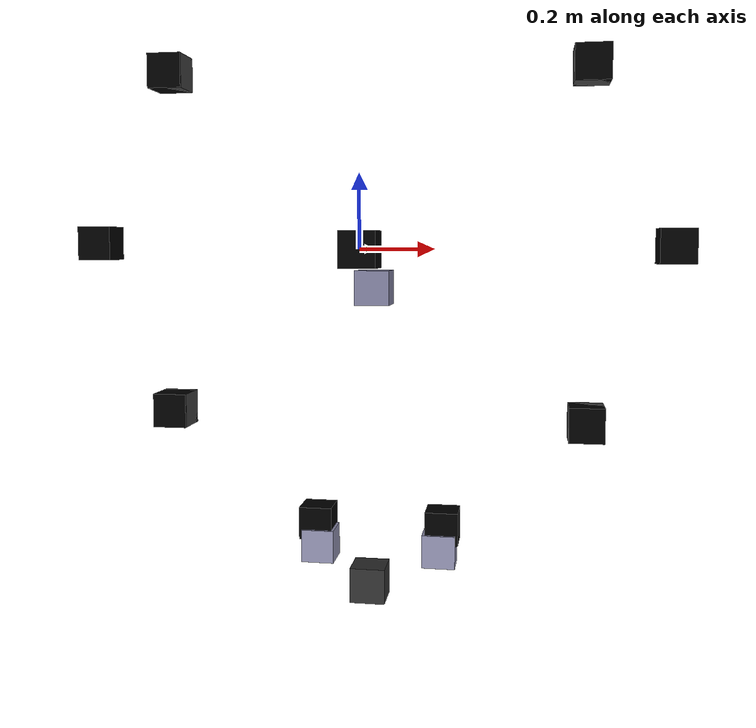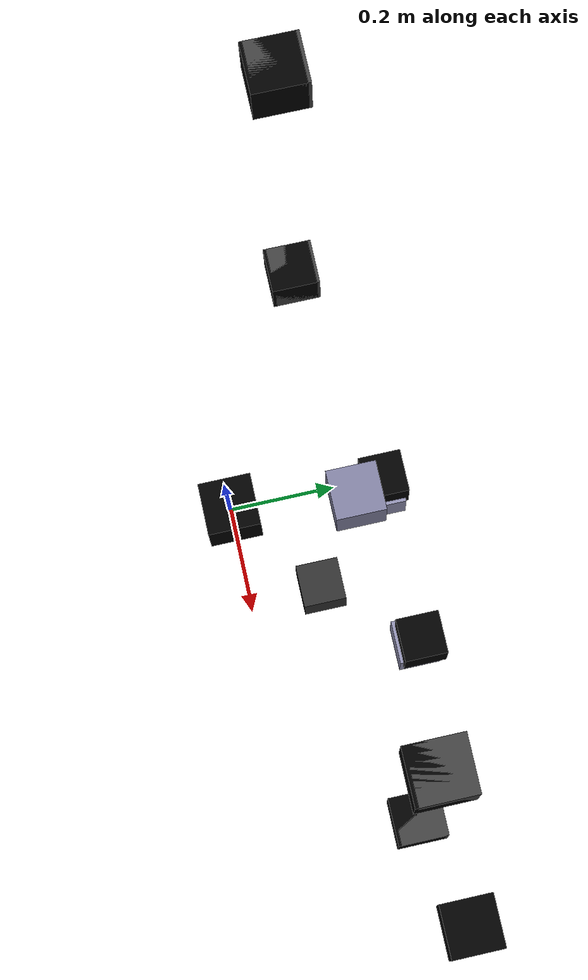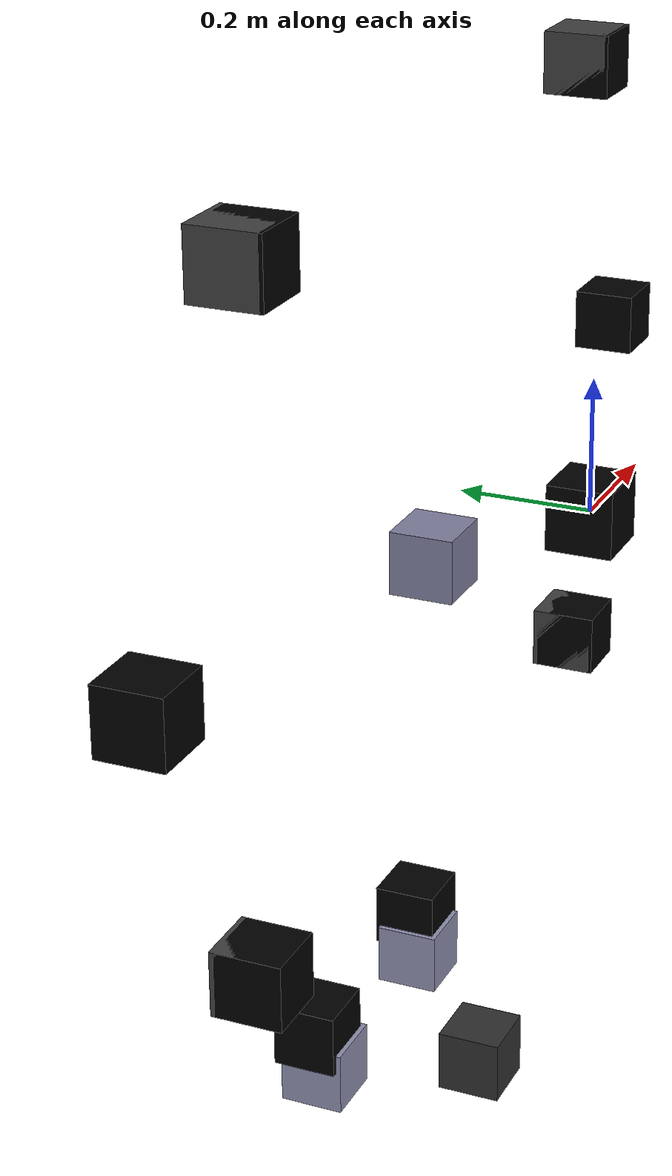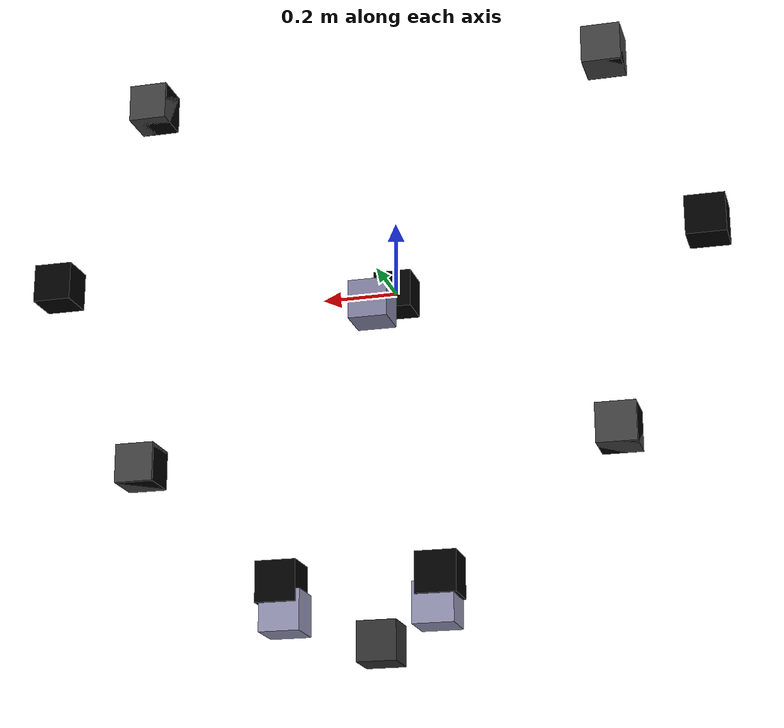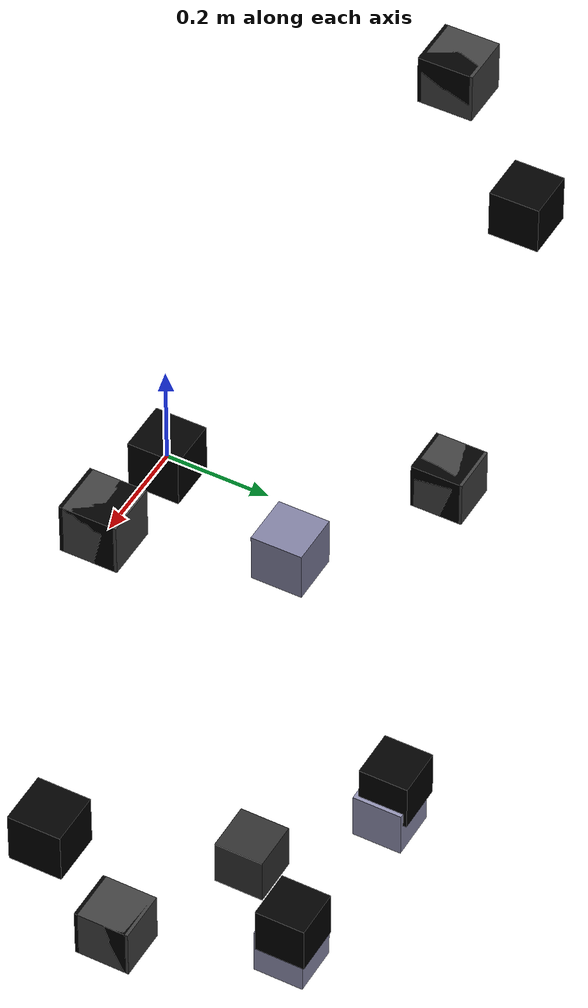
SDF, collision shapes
<?xml version="1.0" ?>
<!--
  vtol model.sdf — generated from vtol.urdf via gz sdf -p
  Spawn pose: x=0 y=0 z=0.3223 roll=1.5708 (belly-down, ground level)
  Propellers start static; mavlink_controller.py spins them up on ARM.
-->
<sdf version="1.11">
<model name='vtol'>
    <link name='base_link'>
      <inertial>
        <pose>2.4691358024688639e-05 0.1169185185185185 -0.036632098765432088 0 0 0</pose>
        <mass>8.0999999999999996</mass>
        <inertia>
          <ixx>2.7324871418765428</ixx>
          <ixy>-0.0024063362962963228</ixy>
          <ixz>0.010952393580246911</ixz>
          <iyy>4.1716076587160487</iyy>
          <iyz>0.075318485185185191</iyz>
          <izz>2.68398566528395</izz>
        </inertia>
      </inertial>
      <collision name='base_link_collision'>
        <pose>0 0 0 0 0 0</pose>
        <geometry>
          <box>
            <size>0.10000000000000001 0.10000000000000001 0.10000000000000001</size>
          </box>
        </geometry>
        <surface>
          <contact>
            <ode/>
          </contact>
          <friction>
            <ode/>
          </friction>
        </surface>
      </collision>
      <collision name='base_link_fixed_joint_lump__motor_1_link_collision_1'>
        <pose>-0.60999999999999999 0.2351 0.51780000000000004 0 0 0</pose>
        <geometry>
          <box>
            <size>0.10000000000000001 0.10000000000000001 0.10000000000000001</size>
          </box>
        </geometry>
        <surface>
          <contact>
            <ode/>
          </contact>
          <friction>
            <ode/>
          </friction>
        </surface>
      </collision>
      <collision name='base_link_fixed_joint_lump__motor_2_link_collision_2'>
        <pose>0.60999999999999999 0.2351 0.50780000000000003 0 0 0</pose>
        <geometry>
          <box>
            <size>0.10000000000000001 0.10000000000000001 0.10000000000000001</size>
          </box>
        </geometry>
        <surface>
          <contact>
            <ode/>
          </contact>
          <friction>
            <ode/>
          </friction>
        </surface>
      </collision>
      <collision name='base_link_fixed_joint_lump__motor_3_link_collision_3'>
        <pose>0.60999999999999999 0.2351 -0.49220000000000003 0 0 0</pose>
        <geometry>
          <box>
            <size>0.10000000000000001 0.10000000000000001 0.10000000000000001</size>
          </box>
        </geometry>
        <surface>
          <contact>
            <ode/>
          </contact>
          <friction>
            <ode/>
          </friction>
        </surface>
      </collision>
      <collision name='base_link_fixed_joint_lump__motor_4_link_collision_4'>
        <pose>-0.60999999999999999 0.2351 -0.48220000000000002 0 0 0</pose>
        <geometry>
          <box>
            <size>0.10000000000000001 0.10000000000000001 0.10000000000000001</size>
          </box>
        </geometry>
        <surface>
          <contact>
            <ode/>
          </contact>
          <friction>
            <ode/>
          </friction>
        </surface>
      </collision>
      <collision name='base_link_fixed_joint_lump__tail_left_link_collision_5'>
        <pose>-0.19420000000000001 0.35630000000000001 -0.84370000000000001 0 0 0</pose>
        <geometry>
          <box>
            <size>0.10000000000000001 0.10000000000000001 0.10000000000000001</size>
          </box>
        </geometry>
        <surface>
          <contact>
            <ode/>
          </contact>
          <friction>
            <ode/>
          </friction>
        </surface>
      </collision>
      <collision name='base_link_fixed_joint_lump__tail_right_link_collision_6'>
        <pose>0.19420000000000001 0.35630000000000001 -0.84370000000000001 0 0 0</pose>
        <geometry>
          <box>
            <size>0.10000000000000001 0.10000000000000001 0.10000000000000001</size>
          </box>
        </geometry>
        <surface>
          <contact>
            <ode/>
          </contact>
          <friction>
            <ode/>
          </friction>
        </surface>
      </collision>
      <collision name='base_link_fixed_joint_lump__wing_left_collision_7'>
        <pose>-0.84899999999999998 0.25979999999999998 0.017000000000000001 0 0 0</pose>
        <geometry>
          <box>
            <size>0.10000000000000001 0.10000000000000001 0.10000000000000001</size>
          </box>
        </geometry>
        <surface>
          <contact>
            <ode/>
          </contact>
          <friction>
            <ode/>
          </friction>
        </surface>
      </collision>
      <collision name='base_link_fixed_joint_lump__wing_right_collision_8'>
        <pose>0.84919999999999995 0.2626 0.0083999999999999995 0 0 0</pose>
        <geometry>
          <box>
            <size>0.10000000000000001 0.10000000000000001 0.10000000000000001</size>
          </box>
        </geometry>
        <surface>
          <contact>
            <ode/>
          </contact>
          <friction>
            <ode/>
          </friction>
        </surface>
      </collision>
      <visual name='base_link_visual'>
        <pose>-1.6242000000000001 -0.32229999999999998 -1.0217000000000001 0 0 0</pose>
        <geometry>
          <mesh>
            <scale>0.001 0.001 0.001</scale>
            <uri>model://vtol/meshes/fuselage.stl</uri>
          </mesh>
        </geometry>
        <material>
          <diffuse>0 0 0 1</diffuse>
          <ambient>0 0 0 1</ambient>
        </material>
      </visual>
      <visual name='base_link_fixed_joint_lump__motor_1_link_visual_1'>
        <pose>-1.6242000000000001 -0.32229999999999998 -1.0217000000000001 0 0 0</pose>
        <geometry>
          <mesh>
            <scale>0.001 0.001 0.001</scale>
            <uri>model://vtol/meshes/motor_1_body.stl</uri>
          </mesh>
        </geometry>
        <material>
          <diffuse>0.187500015 0.187500015 0.187500015 1</diffuse>
          <ambient>0.187500015 0.187500015 0.187500015 1</ambient>
        </material>
      </visual>
      <visual name='base_link_fixed_joint_lump__motor_2_link_visual_2'>
        <pose>-1.6242000000000001 -0.32229999999999998 -1.0217000000000001 0 0 0</pose>
        <geometry>
          <mesh>
            <scale>0.001 0.001 0.001</scale>
            <uri>model://vtol/meshes/motor_2_body.stl</uri>
          </mesh>
        </geometry>
        <material>
          <diffuse>0.187500015 0.187500015 0.187500015 1</diffuse>
          <ambient>0.187500015 0.187500015 0.187500015 1</ambient>
        </material>
      </visual>
      <visual name='base_link_fixed_joint_lump__motor_3_link_visual_3'>
        <pose>-1.6242000000000001 -0.32229999999999998 -1.0217000000000001 0 0 0</pose>
        <geometry>
          <mesh>
            <scale>0.001 0.001 0.001</scale>
            <uri>model://vtol/meshes/motor_3_body.stl</uri>
          </mesh>
        </geometry>
        <material>
          <diffuse>0.187500015 0.187500015 0.187500015 1</diffuse>
          <ambient>0.187500015 0.187500015 0.187500015 1</ambient>
        </material>
      </visual>
      <visual name='base_link_fixed_joint_lump__motor_4_link_visual_4'>
        <pose>-1.6242000000000001 -0.32229999999999998 -1.0217000000000001 0 0 0</pose>
        <geometry>
          <mesh>
            <scale>0.001 0.001 0.001</scale>
            <uri>model://vtol/meshes/motor_4_body.stl</uri>
          </mesh>
        </geometry>
        <material>
          <diffuse>0.187500015 0.187500015 0.187500015 1</diffuse>
          <ambient>0.187500015 0.187500015 0.187500015 1</ambient>
        </material>
      </visual>
      <visual name='base_link_fixed_joint_lump__tail_left_link_visual_5'>
        <pose>-1.6242000000000001 -0.32229999999999998 -1.0217000000000001 0 0 0</pose>
        <geometry>
          <mesh>
            <scale>0.001 0.001 0.001</scale>
            <uri>model://vtol/meshes/tail_left.stl</uri>
          </mesh>
        </geometry>
        <material>
          <diffuse>0.4375 0.4375 0.5 1</diffuse>
          <ambient>0.4375 0.4375 0.5 1</ambient>
        </material>
      </visual>
      <visual name='base_link_fixed_joint_lump__tail_right_link_visual_6'>
        <pose>-1.6242000000000001 -0.32229999999999998 -1.0217000000000001 0 0 0</pose>
        <geometry>
          <mesh>
            <scale>0.001 0.001 0.001</scale>
            <uri>model://vtol/meshes/tail_right.stl</uri>
          </mesh>
        </geometry>
        <material>
          <diffuse>0.4375 0.4375 0.5 1</diffuse>
          <ambient>0.4375 0.4375 0.5 1</ambient>
        </material>
      </visual>
      <visual name='base_link_fixed_joint_lump__wing_left_visual_7'>
        <pose>-1.6242000000000001 -0.32229999999999998 -1.0217000000000001 0 0 0</pose>
        <geometry>
          <mesh>
            <scale>0.001 0.001 0.001</scale>
            <uri>model://vtol/meshes/wing_left.stl</uri>
          </mesh>
        </geometry>
        <material>
          <diffuse>1 1 0 1</diffuse>
          <ambient>1 1 0 1</ambient>
        </material>
      </visual>
      <visual name='base_link_fixed_joint_lump__wing_right_visual_8'>
        <pose>-1.6242000000000001 -0.32229999999999998 -1.0217000000000001 0 0 0</pose>
        <geometry>
          <mesh>
            <scale>0.001 0.001 0.001</scale>
            <uri>model://vtol/meshes/wing_right.stl</uri>
          </mesh>
        </geometry>
        <material>
          <diffuse>1 1 0 1</diffuse>
          <ambient>1 1 0 1</ambient>
        </material>
      </visual>
      <gravity>false</gravity>
      <kinematic>true</kinematic>
      <gravity>false</gravity>
      <kinematic>true</kinematic>
      <gravity>false</gravity>
      <kinematic>true</kinematic>
      <gravity>false</gravity>
      <kinematic>true</kinematic>
      <gravity>false</gravity>
      <kinematic>true</kinematic>
      <gravity>false</gravity>
      <kinematic>true</kinematic>
      <gravity>false</gravity>
      <kinematic>true</kinematic>
      <gravity>false</gravity>
      <kinematic>true</kinematic>
      <gravity>false</gravity>
      <kinematic>true</kinematic>
    </link>
    <joint name='aileron_link_joint' type='revolute'>
      <pose relative_to='base_link'>0 0.24379999999999999 -0.1118 0 0 0</pose>
      <parent>base_link</parent>
      <child>aileron_link</child>
      <axis>
        <xyz>1 0 0</xyz>
        <limit>
          <lower>-0.44</lower>
          <upper>0.44</upper>
          <effort>10</effort>
          <velocity>10</velocity>
        </limit>
        <dynamics>
          <spring_reference>0</spring_reference>
          <spring_stiffness>0</spring_stiffness>
        </dynamics>
      </axis>
    </joint>
    <link name='aileron_link'>
      <pose relative_to='aileron_link_joint'>0 0 0 0 0 0</pose>
      <inertial>
        <pose>0 0 0 0 0 0</pose>
        <mass>0.29999999999999999</mass>
        <inertia>
          <ixx>0.00015899999999999999</ixx>
          <ixy>0</ixy>
          <ixz>0</ixz>
          <iyy>0.210261</iyy>
          <iyz>0</iyz>
          <izz>0.210398</izz>
        </inertia>
      </inertial>
      <collision name='aileron_link_collision'>
        <pose>0 0 0 0 0 0</pose>
        <geometry>
          <box>
            <size>0.10000000000000001 0.10000000000000001 0.10000000000000001</size>
          </box>
        </geometry>
        <surface>
          <contact>
            <ode/>
          </contact>
          <friction>
            <ode/>
          </friction>
        </surface>
      </collision>
      <visual name='aileron_link_visual'>
        <pose>-1.6242000000000001 -0.56610000000000005 -0.90990000000000004 0 0 0</pose>
        <geometry>
          <mesh>
            <scale>0.001 0.001 0.001</scale>
            <uri>model://vtol/meshes/aileron.stl</uri>
          </mesh>
        </geometry>
        <material>
          <diffuse>0.5 0.5 0.625 1</diffuse>
          <ambient>0.5 0.5 0.625 1</ambient>
        </material>
      </visual>
      <gravity>false</gravity>
      <kinematic>true</kinematic>
    </link>
    <joint name='prop_1_joint' type='revolute'>
      <pose relative_to='base_link'>-0.60999999999999999 0.24129999999999999 0.51780000000000004 0 0 0</pose>
      <parent>base_link</parent>
      <child>prop_1_link</child>
      <axis>
        <xyz>0 1 0</xyz>
        <limit>
          <lower>-inf</lower>
          <upper>inf</upper>
        </limit>
        <dynamics>
          <spring_reference>0</spring_reference>
          <spring_stiffness>0</spring_stiffness>
        </dynamics>
      </axis>
    </joint>
    <link name='prop_1_link'>
      <pose relative_to='prop_1_joint'>0 0 0 0 0 0</pose>
      <inertial>
        <pose>0 0 0 0 0 0</pose>
        <mass>0.10000000000000001</mass>
        <inertia>
          <ixx>0.0019599999999999999</ixx>
          <ixy>0</ixy>
          <ixz>0</ixz>
          <iyy>0.0019599999999999999</iyy>
          <iyz>0</iyz>
          <izz>0.0039199999999999999</izz>
        </inertia>
      </inertial>
      <collision name='prop_1_link_collision'>
        <pose>0 0 0 0 0 0</pose>
        <geometry>
          <box>
            <size>0.10000000000000001 0.10000000000000001 0.10000000000000001</size>
          </box>
        </geometry>
        <surface>
          <contact>
            <ode/>
          </contact>
          <friction>
            <ode/>
          </friction>
        </surface>
      </collision>
      <visual name='prop_1_link_visual'>
        <pose>-1.0142 -0.56359999999999999 -1.5395000000000001 0 0 0</pose>
        <geometry>
          <mesh>
            <scale>0.001 0.001 0.001</scale>
            <uri>model://vtol/meshes/prop_1.stl</uri>
          </mesh>
        </geometry>
        <material>
          <diffuse>0.25 0.25 0.25 1</diffuse>
          <ambient>0.25 0.25 0.25 1</ambient>
        </material>
      </visual>
      <gravity>false</gravity>
    </link>
    <joint name='prop_2_joint' type='revolute'>
      <pose relative_to='base_link'>0.60999999999999999 0.24129999999999999 0.50780000000000003 0 0 0</pose>
      <parent>base_link</parent>
      <child>prop_2_link</child>
      <axis>
        <xyz>0 1 0</xyz>
        <limit>
          <lower>-inf</lower>
          <upper>inf</upper>
        </limit>
        <dynamics>
          <spring_reference>0</spring_reference>
          <spring_stiffness>0</spring_stiffness>
        </dynamics>
      </axis>
    </joint>
    <link name='prop_2_link'>
      <pose relative_to='prop_2_joint'>0 0 0 0 0 0</pose>
      <inertial>
        <pose>0 0 0 0 0 0</pose>
        <mass>0.10000000000000001</mass>
        <inertia>
          <ixx>0.0019599999999999999</ixx>
          <ixy>0</ixy>
          <ixz>0</ixz>
          <iyy>0.0019599999999999999</iyy>
          <iyz>0</iyz>
          <izz>0.0039199999999999999</izz>
        </inertia>
      </inertial>
      <collision name='prop_2_link_collision'>
        <pose>0 0 0 0 0 0</pose>
        <geometry>
          <box>
            <size>0.10000000000000001 0.10000000000000001 0.10000000000000001</size>
          </box>
        </geometry>
        <surface>
          <contact>
            <ode/>
          </contact>
          <friction>
            <ode/>
          </friction>
        </surface>
      </collision>
      <visual name='prop_2_link_visual'>
        <pose>-2.2342 -0.56359999999999999 -1.5295000000000001 0 0 0</pose>
        <geometry>
          <mesh>
            <scale>0.001 0.001 0.001</scale>
            <uri>model://vtol/meshes/prop_2.stl</uri>
          </mesh>
        </geometry>
        <material>
          <diffuse>0.25 0.25 0.25 1</diffuse>
          <ambient>0.25 0.25 0.25 1</ambient>
        </material>
      </visual>
      <gravity>false</gravity>
    </link>
    <joint name='prop_3_joint' type='revolute'>
      <pose relative_to='base_link'>0.60999999999999999 0.24129999999999999 -0.49220000000000003 0 0 0</pose>
      <parent>base_link</parent>
      <child>prop_3_link</child>
      <axis>
        <xyz>0 1 0</xyz>
        <limit>
          <lower>-inf</lower>
          <upper>inf</upper>
        </limit>
        <dynamics>
          <spring_reference>0</spring_reference>
          <spring_stiffness>0</spring_stiffness>
        </dynamics>
      </axis>
    </joint>
    <link name='prop_3_link'>
      <pose relative_to='prop_3_joint'>0 0 0 0 0 0</pose>
      <inertial>
        <pose>0 0 0 0 0 0</pose>
        <mass>0.10000000000000001</mass>
        <inertia>
          <ixx>0.0019599999999999999</ixx>
          <ixy>0</ixy>
          <ixz>0</ixz>
          <iyy>0.0019599999999999999</iyy>
          <iyz>0</iyz>
          <izz>0.0039199999999999999</izz>
        </inertia>
      </inertial>
      <collision name='prop_3_link_collision'>
        <pose>0 0 0 0 0 0</pose>
        <geometry>
          <box>
            <size>0.10000000000000001 0.10000000000000001 0.10000000000000001</size>
          </box>
        </geometry>
        <surface>
          <contact>
            <ode/>
          </contact>
          <friction>
            <ode/>
          </friction>
        </surface>
      </collision>
      <visual name='prop_3_link_visual'>
        <pose>-2.2342 -0.56359999999999999 -0.52949999999999997 0 0 0</pose>
        <geometry>
          <mesh>
            <scale>0.001 0.001 0.001</scale>
            <uri>model://vtol/meshes/prop_3.stl</uri>
          </mesh>
        </geometry>
        <material>
          <diffuse>0.25 0.25 0.25 1</diffuse>
          <ambient>0.25 0.25 0.25 1</ambient>
        </material>
      </visual>
      <gravity>false</gravity>
    </link>
    <joint name='prop_4_joint' type='revolute'>
      <pose relative_to='base_link'>-0.60999999999999999 0.24129999999999999 -0.48220000000000002 0 0 0</pose>
      <parent>base_link</parent>
      <child>prop_4_link</child>
      <axis>
        <xyz>0 1 0</xyz>
        <limit>
          <lower>-inf</lower>
          <upper>inf</upper>
        </limit>
        <dynamics>
          <spring_reference>0</spring_reference>
          <spring_stiffness>0</spring_stiffness>
        </dynamics>
      </axis>
    </joint>
    <link name='prop_4_link'>
      <pose relative_to='prop_4_joint'>0 0 0 0 0 0</pose>
      <inertial>
        <pose>0 0 0 0 0 0</pose>
        <mass>0.10000000000000001</mass>
        <inertia>
          <ixx>0.0019599999999999999</ixx>
          <ixy>0</ixy>
          <ixz>0</ixz>
          <iyy>0.0019599999999999999</iyy>
          <iyz>0</iyz>
          <izz>0.0039199999999999999</izz>
        </inertia>
      </inertial>
      <collision name='prop_4_link_collision'>
        <pose>0 0 0 0 0 0</pose>
        <geometry>
          <box>
            <size>0.10000000000000001 0.10000000000000001 0.10000000000000001</size>
          </box>
        </geometry>
        <surface>
          <contact>
            <ode/>
          </contact>
          <friction>
            <ode/>
          </friction>
        </surface>
      </collision>
      <visual name='prop_4_link_visual'>
        <pose>-1.0142 -0.56359999999999999 -0.53949999999999998 0 0 0</pose>
        <geometry>
          <mesh>
            <scale>0.001 0.001 0.001</scale>
            <uri>model://vtol/meshes/prop_4.stl</uri>
          </mesh>
        </geometry>
        <material>
          <diffuse>0.25 0.25 0.25 1</diffuse>
          <ambient>0.25 0.25 0.25 1</ambient>
        </material>
      </visual>
      <gravity>false</gravity>
    </link>
    <joint name='pusher_joint' type='revolute'>
      <pose relative_to='base_link'>0 0.16239999999999999 -0.95979999999999999 0 0 0</pose>
      <parent>base_link</parent>
      <child>pusher_link</child>
      <axis>
        <xyz>0 0 1</xyz>
        <limit>
          <lower>-inf</lower>
          <upper>inf</upper>
        </limit>
        <dynamics>
          <spring_reference>0</spring_reference>
          <spring_stiffness>0</spring_stiffness>
        </dynamics>
      </axis>
    </joint>
    <link name='pusher_link'>
      <pose relative_to='pusher_joint'>0 0 0 0 0 0</pose>
      <inertial>
        <pose>0 0 0 0 0 0</pose>
        <mass>0.5</mass>
        <inertia>
          <ixx>0.0030000000000000001</ixx>
          <ixy>0</ixy>
          <ixz>0</ixz>
          <iyy>0.0030000000000000001</iyy>
          <iyz>0</iyz>
          <izz>0.0050000000000000001</izz>
        </inertia>
      </inertial>
      <collision name='pusher_link_collision'>
        <pose>0 0 0 0 0 0</pose>
        <geometry>
          <box>
            <size>0.10000000000000001 0.10000000000000001 0.10000000000000001</size>
          </box>
        </geometry>
        <surface>
          <contact>
            <ode/>
          </contact>
          <friction>
            <ode/>
          </friction>
        </surface>
      </collision>
      <visual name='pusher_link_visual'>
        <pose>-1.6242000000000001 -0.48470000000000002 -0.061899999999999997 0 0 0</pose>
        <geometry>
          <mesh>
            <scale>0.001 0.001 0.001</scale>
            <uri>model://vtol/meshes/pusher.stl</uri>
          </mesh>
        </geometry>
        <material>
          <diffuse>0.187500015 0.187500015 0.187500015 1</diffuse>
          <ambient>0.187500015 0.187500015 0.187500015 1</ambient>
        </material>
      </visual>
      <gravity>false</gravity>
    </link>
    <joint name='ruddervator_left_link_joint' type='revolute'>
      <pose relative_to='base_link'>-0.186 0.3488 -0.91259999999999997 0 0 0</pose>
      <parent>base_link</parent>
      <child>ruddervator_left_link</child>
      <axis>
        <xyz>0.70699999999999996 0.70699999999999996 0</xyz>
        <limit>
          <lower>-0.44</lower>
          <upper>0.44</upper>
          <effort>10</effort>
          <velocity>10</velocity>
        </limit>
        <dynamics>
          <spring_reference>0</spring_reference>
          <spring_stiffness>0</spring_stiffness>
        </dynamics>
      </axis>
    </joint>
    <link name='ruddervator_left_link'>
      <pose relative_to='ruddervator_left_link_joint'>0 0 0 0 0 0</pose>
      <inertial>
        <pose>0 0 0 0 0 0</pose>
        <mass>0.20000000000000001</mass>
        <inertia>
          <ixx>0.002</ixx>
          <ixy>0</ixy>
          <ixz>0</ixz>
          <iyy>0.00080000000000000004</iyy>
          <iyz>0</iyz>
          <izz>0.002</izz>
        </inertia>
      </inertial>
      <collision name='ruddervator_left_link_collision'>
        <pose>0 0 0 0 0 0</pose>
        <geometry>
          <box>
            <size>0.10000000000000001 0.10000000000000001 0.10000000000000001</size>
          </box>
        </geometry>
        <surface>
          <contact>
            <ode/>
          </contact>
          <friction>
            <ode/>
          </friction>
        </surface>
      </collision>
      <visual name='ruddervator_left_link_visual'>
        <pose>-1.4381999999999999 -0.67110000000000003 -0.1091 0 0 0</pose>
        <geometry>
          <mesh>
            <scale>0.001 0.001 0.001</scale>
            <uri>model://vtol/meshes/ruddervator_left.stl</uri>
          </mesh>
        </geometry>
        <material>
          <diffuse>0.5625 0.5625 0.6875 1</diffuse>
          <ambient>0.5625 0.5625 0.6875 1</ambient>
        </material>
      </visual>
      <gravity>false</gravity>
      <kinematic>true</kinematic>
    </link>
    <joint name='ruddervator_right_link_joint' type='revolute'>
      <pose relative_to='base_link'>0.186 0.3488 -0.91259999999999997 0 0 0</pose>
      <parent>base_link</parent>
      <child>ruddervator_right_link</child>
      <axis>
        <xyz>-0.70699999999999996 0.70699999999999996 0</xyz>
        <limit>
          <lower>-0.44</lower>
          <upper>0.44</upper>
          <effort>10</effort>
          <velocity>10</velocity>
        </limit>
        <dynamics>
          <spring_reference>0</spring_reference>
          <spring_stiffness>0</spring_stiffness>
        </dynamics>
      </axis>
    </joint>
    <link name='ruddervator_right_link'>
      <pose relative_to='ruddervator_right_link_joint'>0 0 0 0 0 0</pose>
      <inertial>
        <pose>0 0 0 0 0 0</pose>
        <mass>0.20000000000000001</mass>
        <inertia>
          <ixx>0.002</ixx>
          <ixy>0</ixy>
          <ixz>0</ixz>
          <iyy>0.00080000000000000004</iyy>
          <iyz>0</iyz>
          <izz>0.002</izz>
        </inertia>
      </inertial>
      <collision name='ruddervator_right_link_collision'>
        <pose>0 0 0 0 0 0</pose>
        <geometry>
          <box>
            <size>0.10000000000000001 0.10000000000000001 0.10000000000000001</size>
          </box>
        </geometry>
        <surface>
          <contact>
            <ode/>
          </contact>
          <friction>
            <ode/>
          </friction>
        </surface>
      </collision>
      <visual name='ruddervator_right_link_visual'>
        <pose>-1.8102 -0.67110000000000003 -0.1091 0 0 0</pose>
        <geometry>
          <mesh>
            <scale>0.001 0.001 0.001</scale>
            <uri>model://vtol/meshes/ruddervator_right.stl</uri>
          </mesh>
        </geometry>
        <material>
          <diffuse>0.5625 0.5625 0.6875 1</diffuse>
          <ambient>0.5625 0.5625 0.6875 1</ambient>
        </material>
      </visual>
      <gravity>false</gravity>
      <kinematic>true</kinematic>
    </link>
    <plugin name='gz::sim::systems::JointController' filename='gz-sim-joint-controller-system'>
      <joint_name>prop_1_joint</joint_name>
      <initial_velocity>0.0</initial_velocity>
    </plugin>
    <plugin name='gz::sim::systems::JointController' filename='gz-sim-joint-controller-system'>
      <joint_name>prop_2_joint</joint_name>
      <initial_velocity>0.0</initial_velocity>
    </plugin>
    <plugin name='gz::sim::systems::JointController' filename='gz-sim-joint-controller-system'>
      <joint_name>prop_3_joint</joint_name>
      <initial_velocity>0.0</initial_velocity>
    </plugin>
    <plugin name='gz::sim::systems::JointController' filename='gz-sim-joint-controller-system'>
      <joint_name>prop_4_joint</joint_name>
      <initial_velocity>0.0</initial_velocity>
    </plugin>
    <plugin name='gz::sim::systems::JointController' filename='gz-sim-joint-controller-system'>
      <joint_name>pusher_joint</joint_name>
      <initial_velocity>0.0</initial_velocity>
    </plugin>
    <frame name='motor_1_joint' attached_to='base_link'>
      <pose>-0.60999999999999999 0.2351 0.51780000000000004 0 0 0</pose>
    </frame>
    <frame name='motor_1_link' attached_to='motor_1_joint'>
      <pose>0 0 0 0 0 0</pose>
    </frame>
    <frame name='motor_2_joint' attached_to='base_link'>
      <pose>0.60999999999999999 0.2351 0.50780000000000003 0 0 0</pose>
    </frame>
    <frame name='motor_2_link' attached_to='motor_2_joint'>
      <pose>0 0 0 0 0 0</pose>
    </frame>
    <frame name='motor_3_joint' attached_to='base_link'>
      <pose>0.60999999999999999 0.2351 -0.49220000000000003 0 0 0</pose>
    </frame>
    <frame name='motor_3_link' attached_to='motor_3_joint'>
      <pose>0 0 0 0 0 0</pose>
    </frame>
    <frame name='motor_4_joint' attached_to='base_link'>
      <pose>-0.60999999999999999 0.2351 -0.48220000000000002 0 0 0</pose>
    </frame>
    <frame name='motor_4_link' attached_to='motor_4_joint'>
      <pose>0 0 0 0 0 0</pose>
    </frame>
    <frame name='tail_left_link_joint' attached_to='base_link'>
      <pose>-0.19420000000000001 0.35630000000000001 -0.84370000000000001 0 0 0</pose>
    </frame>
    <frame name='tail_left_link' attached_to='tail_left_link_joint'>
      <pose>0 0 0 0 0 0</pose>
    </frame>
    <frame name='tail_right_link_joint' attached_to='base_link'>
      <pose>0.19420000000000001 0.35630000000000001 -0.84370000000000001 0 0 0</pose>
    </frame>
    <frame name='tail_right_link' attached_to='tail_right_link_joint'>
      <pose>0 0 0 0 0 0</pose>
    </frame>
    <frame name='wing_left_joint' attached_to='base_link'>
      <pose>-0.84899999999999998 0.25979999999999998 0.017000000000000001 0 0 0</pose>
    </frame>
    <frame name='wing_left' attached_to='wing_left_joint'>
      <pose>0 0 0 0 0 0</pose>
    </frame>
    <frame name='wing_right_joint' attached_to='base_link'>
      <pose>0.84919999999999995 0.2626 0.0083999999999999995 0 0 0</pose>
    </frame>
    <frame name='wing_right' attached_to='wing_right_joint'>
      <pose>0 0 0 0 0 0</pose>
    </frame>
  </model>
</sdf>
